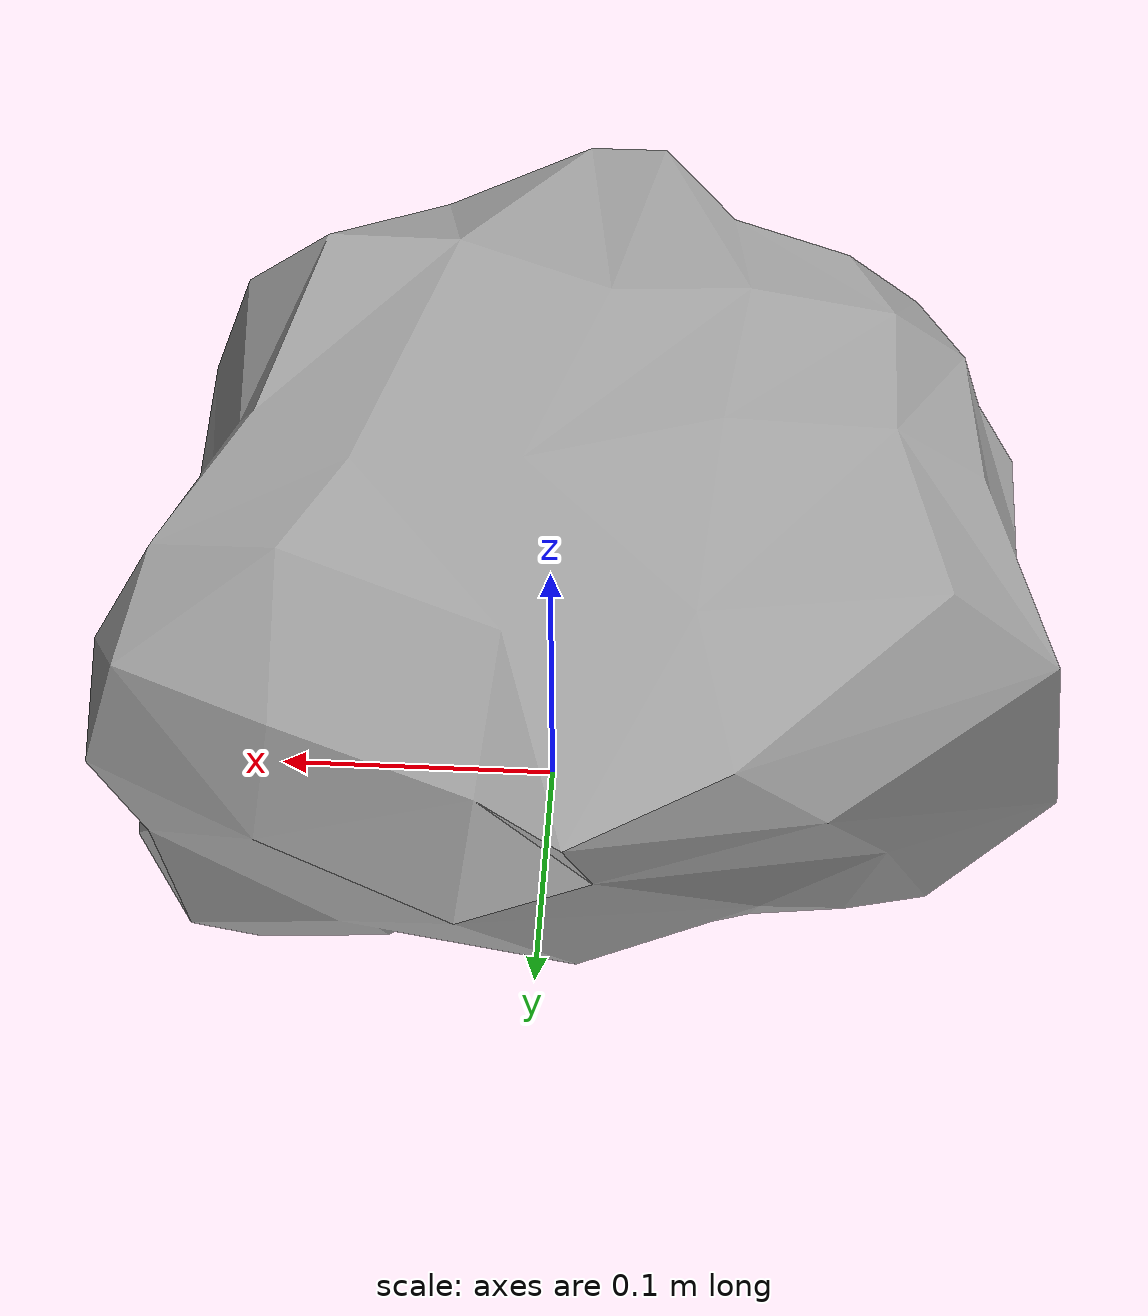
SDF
<?xml version="1.0" ?>

<sdf version="1.5">
<model name="stone">
  <link name="stone">
    <pose>0 0 0 0 0 0</pose>
    <visual name="visual">
      <geometry>
        <mesh>
          <uri>file:///home/daniele/snake_andrea/src/snake/snake_description/worlds/stone/meshes/newstone.dae</uri>
	  <scale>0.1 0.1 0.1</scale>
        </mesh>
      </geometry>
      <material>
        <script>Gazebo/Wood</script>
      </material>
    </visual>
    <inertial>
      <mass>26.328672355000002</mass>
      <inertia>
        <ixx>198.28156885</ixx>
        <ixy>0.0</ixy>
        <ixz>0.0</ixz>
        <iyy>190.7045026</iyy>
        <iyz>0.0</iyz>
        <izz>300.70076895000005</izz>
      </inertia>
    </inertial>
    <collision name="collision">
      <geometry>
        <mesh>
          <uri>file:///home/daniele/snake_andrea/src/snake/snake_description/worlds/stone/meshes/newstone.dae</uri>
	  <scale>0.1 0.1 0.1</scale>
        </mesh>
      </geometry>
      <surface>
        <friction>
          <ode>
            <mu>0.5</mu>
            <mu2>0.5</mu2>
          </ode>
        </friction>
      </surface>
    </collision>
  </link>
</model>
</sdf>
